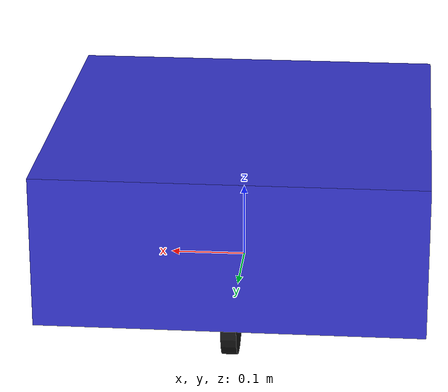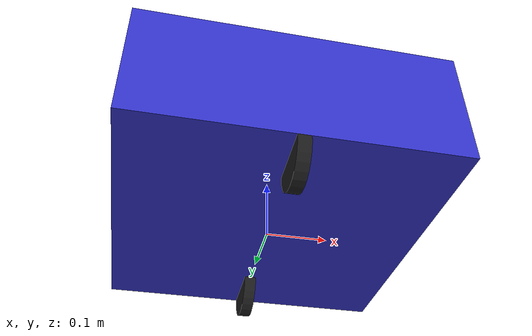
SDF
<?xml version="1.0"?>
<sdf version="1.6">
  <model name="hospital_robot">
    <link name="base_link">
      <pose>0 0 0.1 0 0 0</pose>
      <visual name="visual">
        <geometry>
          <box>
            <size>0.5 0.5 0.2</size>
          </box>
        </geometry>
        <material>
          <ambient>0.2 0.2 0.8 1.0</ambient>
          <diffuse>0.2 0.2 0.8 1.0</diffuse>
        </material>
      </visual>
      <collision name="collision">
        <geometry>
          <box>
            <size>0.5 0.5 0.2</size>
          </box>
        </geometry>
      </collision>
      <inertial>
        <mass>5.0</mass>
        <inertia>
          <ixx>0.1</ixx>
          <ixy>0</ixy>
          <ixz>0</ixz>
          <iyy>0.1</iyy>
          <iyz>0</iyz>
          <izz>0.1</izz>
        </inertia>
      </inertial>
    </link>

    <link name="wheel_left">
      <pose>0 0.2 0 0 1.5708 0</pose>
      <visual name="visual">
        <geometry>
          <cylinder>
            <radius>0.05</radius>
            <length>0.02</length>
          </cylinder>
        </geometry>
        <material>
          <ambient>0.1 0.1 0.1 1.0</ambient>
          <diffuse>0.1 0.1 0.1 1.0</diffuse>
        </material>
      </visual>
      <collision name="collision">
        <geometry>
          <cylinder>
            <radius>0.05</radius>
            <length>0.02</length>
          </cylinder>
        </geometry>
      </collision>
      <inertial>
        <mass>0.5</mass>
        <inertia>
          <ixx>0.001</ixx>
          <ixy>0</ixy>
          <ixz>0</ixz>
          <iyy>0.001</iyy>
          <iyz>0</iyz>
          <izz>0.001</izz>
        </inertia>
      </inertial>
    </link>

    <link name="wheel_right">
      <pose>0 -0.2 0 0 1.5708 0</pose>
      <visual name="visual">
        <geometry>
          <cylinder>
            <radius>0.05</radius>
            <length>0.02</length>
          </cylinder>
        </geometry>
        <material>
          <ambient>0.1 0.1 0.1 1.0</ambient>
          <diffuse>0.1 0.1 0.1 1.0</diffuse>
        </material>
      </visual>
      <collision name="collision">
        <geometry>
          <cylinder>
            <radius>0.05</radius>
            <length>0.02</length>
          </cylinder>
        </geometry>
      </collision>
      <inertial>
        <mass>0.5</mass>
        <inertia>
          <ixx>0.001</ixx>
          <ixy>0</ixy>
          <ixz>0</ixz>
          <iyy>0.001</iyy>
          <iyz>0</iyz>
          <izz>0.001</izz>
        </inertia>
      </inertial>
    </link>

    <joint name="base_to_wheel_left" type="revolute">
      <parent>base_link</parent>
      <child>wheel_left</child>
      <axis>
        <xyz>0 1 0</xyz>
        <limit>
          <lower>-1e+16</lower>
          <upper>1e+16</upper>
        </limit>
      </axis>
    </joint>

    <joint name="base_to_wheel_right" type="revolute">
      <parent>base_link</parent>
      <child>wheel_right</child>
      <axis>
        <xyz>0 1 0</xyz>
        <limit>
          <lower>-1e+16</lower>
          <upper>1e+16</upper>
        </limit>
      </axis>
    </joint>

    <link name="laser_link">
      <pose>0.2 0 0.15 0 0 0</pose>
      <visual name="visual">
        <geometry>
          <cylinder>
            <radius>0.02</radius>
            <length>0.05</length>
          </cylinder>
        </geometry>
        <material>
          <ambient>0.5 0.5 0.5 1.0</ambient>
          <diffuse>0.5 0.5 0.5 1.0</diffuse>
        </material>
      </visual>
      <collision name="collision">
        <geometry>
          <cylinder>
            <radius>0.02</radius>
            <length>0.05</length>
          </cylinder>
        </geometry>
      </collision>
      <inertial>
        <mass>0.1</mass>
        <inertia>
          <ixx>0.0001</ixx>
          <ixy>0</ixy>
          <ixz>0</ixz>
          <iyy>0.0001</iyy>
          <iyz>0</iyz>
          <izz>0.0001</izz>
        </inertia>
      </inertial>
    </link>

    <joint name="base_to_laser" type="fixed">
      <parent>base_link</parent>
      <child>laser_link</child>
      <pose>0.2 0 0.15 0 0 0</pose>
    </joint>

    <plugin name="gz::sim::systems::DiffDrive" filename="libgz-sim8-diff-drive-system.so">
      <left_joint>base_to_wheel_left</left_joint>
      <right_joint>base_to_wheel_right</right_joint>
      <wheel_separation>0.4</wheel_separation>
      <wheel_radius>0.05</wheel_radius>
      <topic>cmd_vel</topic>
      <odom_topic>odom</odom_topic>
      <frame_id>odom</frame_id>
      <child_frame_id>base_link</child_frame_id>
    </plugin>

    <plugin name="gz::sim::systems::Sensors" filename="libgz-sim8-sensors-system.so">
      <topic>scan</topic>
      <frame_id>laser_link</frame_id>
      <update_rate>10</update_rate>
      <ray>
        <scan>
          <horizontal>
            <samples>360</samples>
            <resolution>1</resolution>
            <min_angle>-3.14159</min_angle>
            <max_angle>3.14159</max_angle>
          </horizontal>
        </scan>
        <range>
          <min>0.08</min>
          <max>10.0</max>
          <resolution>0.01</resolution>
        </range>
      </ray>
    </plugin>
  </model>
</sdf>
